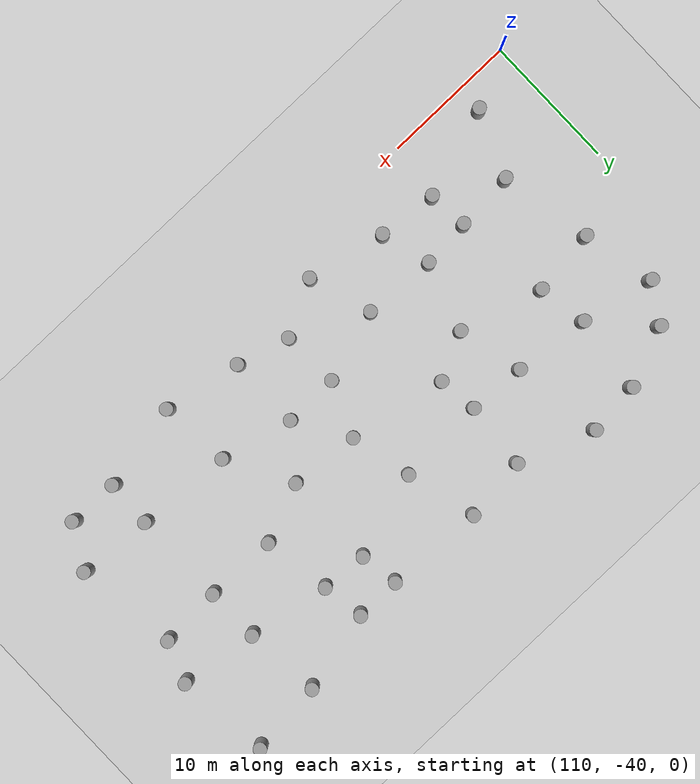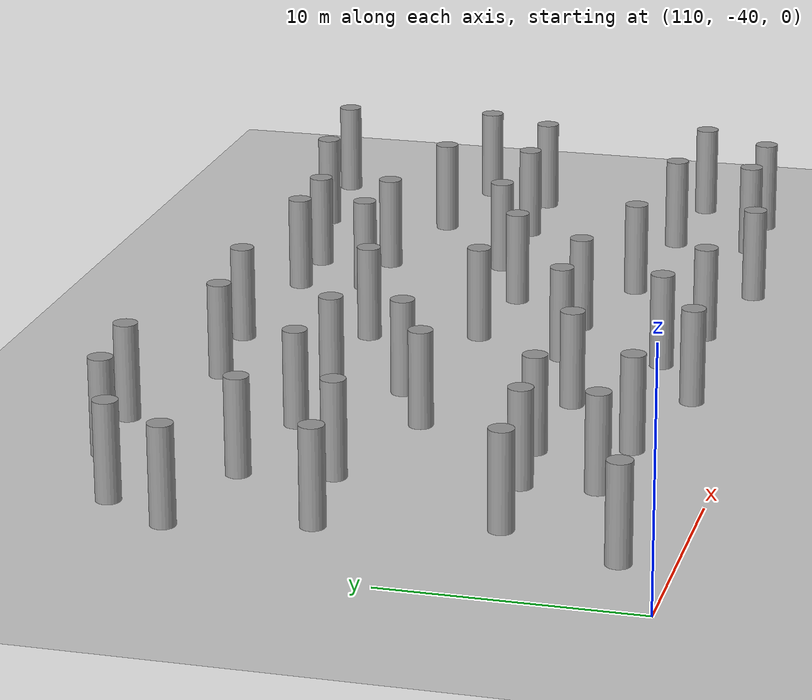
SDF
<sdf version="1.5">
 <world name="circle">
  <model name="ground">
   <static>1</static>
   <link name="link">
    <collision name="collision">
     <geometry><plane><normal>0 0 1</normal><size>100 100</size></plane></geometry>
     <surface><friction><ode><mu>100</mu><mu2>50</mu2></ode></friction></surface>
    </collision>
    <visual name="visual">
     <cast_shadows>0</cast_shadows>
     <geometry><plane><normal>0 0 1</normal><size>100 100</size></plane></geometry>
     <material>
      <script><uri>file://media/materials/scripts/gazebo.material</uri><name>Gazebo/Grey</name></script>
     </material>
    </visual>
    <velocity_decay><linear>0</linear><angular>0</angular></velocity_decay>
   </link>
  </model>
  <model name="unit_cylinder_315">
   <pose>114.154298227 -37.9532087649 2 3e-06 4e-06 -0</pose>
   <static>1</static>
   <self_collide>1</self_collide>
   <link name="link">
    <inertial>
     <mass>1</mass>
     <inertia><ixx>0.145833</ixx><ixy>0</ixy><ixz>0</ixz><iyy>0.145833</iyy><iyz>0</iyz><izz>0.125</izz></inertia>
    </inertial>
    <collision name="collision">
     <geometry><cylinder><radius>0.5</radius><length>4</length></cylinder></geometry>
    </collision>
    <visual name="visual">
     <geometry><cylinder><radius>0.5</radius><length>4</length></cylinder></geometry>
     <material>
      <script><name>Gazebo/Grey</name><uri>file://media/materials/scripts/gazebo.material</uri></script>
     </material>
    </visual>
    <collision name="cyl_collision">
     <geometry><cylinder><radius>0.5</radius><length>4</length></cylinder></geometry>
    </collision>
    <sensor name="my_contact" type="contact">
     <contact><collision>cyl_collision</collision></contact>
     <update_rate>5</update_rate>
    </sensor>
   </link>
  </model>
  <model name="unit_cylinder_316">
   <pose>116.144369179 -33.1801979387 2 3e-06 4e-06 -0</pose>
   <static>1</static>
   <self_collide>1</self_collide>
   <link name="link">
    <inertial>
     <mass>1</mass>
     <inertia><ixx>0.145833</ixx><ixy>0</ixy><ixz>0</ixz><iyy>0.145833</iyy><iyz>0</iyz><izz>0.125</izz></inertia>
    </inertial>
    <collision name="collision">
     <geometry><cylinder><radius>0.5</radius><length>4</length></cylinder></geometry>
    </collision>
    <visual name="visual">
     <geometry><cylinder><radius>0.5</radius><length>4</length></cylinder></geometry>
     <material>
      <script><name>Gazebo/Grey</name><uri>file://media/materials/scripts/gazebo.material</uri></script>
     </material>
    </visual>
    <collision name="cyl_collision">
     <geometry><cylinder><radius>0.5</radius><length>4</length></cylinder></geometry>
    </collision>
    <sensor name="my_contact" type="contact">
     <contact><collision>cyl_collision</collision></contact>
     <update_rate>5</update_rate>
    </sensor>
   </link>
  </model>
  <model name="unit_cylinder_317">
   <pose>114.827357238 -26.4241810437 2 3e-06 4e-06 -0</pose>
   <static>1</static>
   <self_collide>1</self_collide>
   <link name="link">
    <inertial>
     <mass>1</mass>
     <inertia><ixx>0.145833</ixx><ixy>0</ixy><ixz>0</ixz><iyy>0.145833</iyy><iyz>0</iyz><izz>0.125</izz></inertia>
    </inertial>
    <collision name="collision">
     <geometry><cylinder><radius>0.5</radius><length>4</length></cylinder></geometry>
    </collision>
    <visual name="visual">
     <geometry><cylinder><radius>0.5</radius><length>4</length></cylinder></geometry>
     <material>
      <script><name>Gazebo/Grey</name><uri>file://media/materials/scripts/gazebo.material</uri></script>
     </material>
    </visual>
    <collision name="cyl_collision">
     <geometry><cylinder><radius>0.5</radius><length>4</length></cylinder></geometry>
    </collision>
    <sensor name="my_contact" type="contact">
     <contact><collision>cyl_collision</collision></contact>
     <update_rate>5</update_rate>
    </sensor>
   </link>
  </model>
  <model name="unit_cylinder_318">
   <pose>113.630336862 -21.0624383714 2 3e-06 4e-06 -0</pose>
   <static>1</static>
   <self_collide>1</self_collide>
   <link name="link">
    <inertial>
     <mass>1</mass>
     <inertia><ixx>0.145833</ixx><ixy>0</ixy><ixz>0</ixz><iyy>0.145833</iyy><iyz>0</iyz><izz>0.125</izz></inertia>
    </inertial>
    <collision name="collision">
     <geometry><cylinder><radius>0.5</radius><length>4</length></cylinder></geometry>
    </collision>
    <visual name="visual">
     <geometry><cylinder><radius>0.5</radius><length>4</length></cylinder></geometry>
     <material>
      <script><name>Gazebo/Grey</name><uri>file://media/materials/scripts/gazebo.material</uri></script>
     </material>
    </visual>
    <collision name="cyl_collision">
     <geometry><cylinder><radius>0.5</radius><length>4</length></cylinder></geometry>
    </collision>
    <sensor name="my_contact" type="contact">
     <contact><collision>cyl_collision</collision></contact>
     <update_rate>5</update_rate>
    </sensor>
   </link>
  </model>
  <model name="unit_cylinder_319">
   <pose>115.393090659 -18.3143302626 2 3e-06 4e-06 -0</pose>
   <static>1</static>
   <self_collide>1</self_collide>
   <link name="link">
    <inertial>
     <mass>1</mass>
     <inertia><ixx>0.145833</ixx><ixy>0</ixy><ixz>0</ixz><iyy>0.145833</iyy><iyz>0</iyz><izz>0.125</izz></inertia>
    </inertial>
    <collision name="collision">
     <geometry><cylinder><radius>0.5</radius><length>4</length></cylinder></geometry>
    </collision>
    <visual name="visual">
     <geometry><cylinder><radius>0.5</radius><length>4</length></cylinder></geometry>
     <material>
      <script><name>Gazebo/Grey</name><uri>file://media/materials/scripts/gazebo.material</uri></script>
     </material>
    </visual>
    <collision name="cyl_collision">
     <geometry><cylinder><radius>0.5</radius><length>4</length></cylinder></geometry>
    </collision>
    <sensor name="my_contact" type="contact">
     <contact><collision>cyl_collision</collision></contact>
     <update_rate>5</update_rate>
    </sensor>
   </link>
  </model>
  <model name="unit_cylinder_330">
   <pose>120.680619612 -35.805626211 2 3e-06 4e-06 -0</pose>
   <static>1</static>
   <self_collide>1</self_collide>
   <link name="link">
    <inertial>
     <mass>1</mass>
     <inertia><ixx>0.145833</ixx><ixy>0</ixy><ixz>0</ixz><iyy>0.145833</iyy><iyz>0</iyz><izz>0.125</izz></inertia>
    </inertial>
    <collision name="collision">
     <geometry><cylinder><radius>0.5</radius><length>4</length></cylinder></geometry>
    </collision>
    <visual name="visual">
     <geometry><cylinder><radius>0.5</radius><length>4</length></cylinder></geometry>
     <material>
      <script><name>Gazebo/Grey</name><uri>file://media/materials/scripts/gazebo.material</uri></script>
     </material>
    </visual>
    <collision name="cyl_collision">
     <geometry><cylinder><radius>0.5</radius><length>4</length></cylinder></geometry>
    </collision>
    <sensor name="my_contact" type="contact">
     <contact><collision>cyl_collision</collision></contact>
     <update_rate>5</update_rate>
    </sensor>
   </link>
  </model>
  <model name="unit_cylinder_331">
   <pose>120.445257327 -32.88234529 2 3e-06 4e-06 -0</pose>
   <static>1</static>
   <self_collide>1</self_collide>
   <link name="link">
    <inertial>
     <mass>1</mass>
     <inertia><ixx>0.145833</ixx><ixy>0</ixy><ixz>0</ixz><iyy>0.145833</iyy><iyz>0</iyz><izz>0.125</izz></inertia>
    </inertial>
    <collision name="collision">
     <geometry><cylinder><radius>0.5</radius><length>4</length></cylinder></geometry>
    </collision>
    <visual name="visual">
     <geometry><cylinder><radius>0.5</radius><length>4</length></cylinder></geometry>
     <material>
      <script><name>Gazebo/Grey</name><uri>file://media/materials/scripts/gazebo.material</uri></script>
     </material>
    </visual>
    <collision name="cyl_collision">
     <geometry><cylinder><radius>0.5</radius><length>4</length></cylinder></geometry>
    </collision>
    <sensor name="my_contact" type="contact">
     <contact><collision>cyl_collision</collision></contact>
     <update_rate>5</update_rate>
    </sensor>
   </link>
  </model>
  <model name="unit_cylinder_332">
   <pose>119.623123764 -25.8425737322 2 3e-06 4e-06 -0</pose>
   <static>1</static>
   <self_collide>1</self_collide>
   <link name="link">
    <inertial>
     <mass>1</mass>
     <inertia><ixx>0.145833</ixx><ixy>0</ixy><ixz>0</ixz><iyy>0.145833</iyy><iyz>0</iyz><izz>0.125</izz></inertia>
    </inertial>
    <collision name="collision">
     <geometry><cylinder><radius>0.5</radius><length>4</length></cylinder></geometry>
    </collision>
    <visual name="visual">
     <geometry><cylinder><radius>0.5</radius><length>4</length></cylinder></geometry>
     <material>
      <script><name>Gazebo/Grey</name><uri>file://media/materials/scripts/gazebo.material</uri></script>
     </material>
    </visual>
    <collision name="cyl_collision">
     <geometry><cylinder><radius>0.5</radius><length>4</length></cylinder></geometry>
    </collision>
    <sensor name="my_contact" type="contact">
     <contact><collision>cyl_collision</collision></contact>
     <update_rate>5</update_rate>
    </sensor>
   </link>
  </model>
  <model name="unit_cylinder_333">
   <pose>119.026360605 -22.2174276852 2 3e-06 4e-06 -0</pose>
   <static>1</static>
   <self_collide>1</self_collide>
   <link name="link">
    <inertial>
     <mass>1</mass>
     <inertia><ixx>0.145833</ixx><ixy>0</ixy><ixz>0</ixz><iyy>0.145833</iyy><iyz>0</iyz><izz>0.125</izz></inertia>
    </inertial>
    <collision name="collision">
     <geometry><cylinder><radius>0.5</radius><length>4</length></cylinder></geometry>
    </collision>
    <visual name="visual">
     <geometry><cylinder><radius>0.5</radius><length>4</length></cylinder></geometry>
     <material>
      <script><name>Gazebo/Grey</name><uri>file://media/materials/scripts/gazebo.material</uri></script>
     </material>
    </visual>
    <collision name="cyl_collision">
     <geometry><cylinder><radius>0.5</radius><length>4</length></cylinder></geometry>
    </collision>
    <sensor name="my_contact" type="contact">
     <contact><collision>cyl_collision</collision></contact>
     <update_rate>5</update_rate>
    </sensor>
   </link>
  </model>
  <model name="unit_cylinder_334">
   <pose>119.735586412 -16.5512475703 2 3e-06 4e-06 -0</pose>
   <static>1</static>
   <self_collide>1</self_collide>
   <link name="link">
    <inertial>
     <mass>1</mass>
     <inertia><ixx>0.145833</ixx><ixy>0</ixy><ixz>0</ixz><iyy>0.145833</iyy><iyz>0</iyz><izz>0.125</izz></inertia>
    </inertial>
    <collision name="collision">
     <geometry><cylinder><radius>0.5</radius><length>4</length></cylinder></geometry>
    </collision>
    <visual name="visual">
     <geometry><cylinder><radius>0.5</radius><length>4</length></cylinder></geometry>
     <material>
      <script><name>Gazebo/Grey</name><uri>file://media/materials/scripts/gazebo.material</uri></script>
     </material>
    </visual>
    <collision name="cyl_collision">
     <geometry><cylinder><radius>0.5</radius><length>4</length></cylinder></geometry>
    </collision>
    <sensor name="my_contact" type="contact">
     <contact><collision>cyl_collision</collision></contact>
     <update_rate>5</update_rate>
    </sensor>
   </link>
  </model>
  <model name="unit_cylinder_345">
   <pose>125.042195653 -36.2374772595 2 3e-06 4e-06 -0</pose>
   <static>1</static>
   <self_collide>1</self_collide>
   <link name="link">
    <inertial>
     <mass>1</mass>
     <inertia><ixx>0.145833</ixx><ixy>0</ixy><ixz>0</ixz><iyy>0.145833</iyy><iyz>0</iyz><izz>0.125</izz></inertia>
    </inertial>
    <collision name="collision">
     <geometry><cylinder><radius>0.5</radius><length>4</length></cylinder></geometry>
    </collision>
    <visual name="visual">
     <geometry><cylinder><radius>0.5</radius><length>4</length></cylinder></geometry>
     <material>
      <script><name>Gazebo/Grey</name><uri>file://media/materials/scripts/gazebo.material</uri></script>
     </material>
    </visual>
    <collision name="cyl_collision">
     <geometry><cylinder><radius>0.5</radius><length>4</length></cylinder></geometry>
    </collision>
    <sensor name="my_contact" type="contact">
     <contact><collision>cyl_collision</collision></contact>
     <update_rate>5</update_rate>
    </sensor>
   </link>
  </model>
  <model name="unit_cylinder_346">
   <pose>124.050640509 -32.5994924446 2 3e-06 4e-06 -0</pose>
   <static>1</static>
   <self_collide>1</self_collide>
   <link name="link">
    <inertial>
     <mass>1</mass>
     <inertia><ixx>0.145833</ixx><ixy>0</ixy><ixz>0</ixz><iyy>0.145833</iyy><iyz>0</iyz><izz>0.125</izz></inertia>
    </inertial>
    <collision name="collision">
     <geometry><cylinder><radius>0.5</radius><length>4</length></cylinder></geometry>
    </collision>
    <visual name="visual">
     <geometry><cylinder><radius>0.5</radius><length>4</length></cylinder></geometry>
     <material>
      <script><name>Gazebo/Grey</name><uri>file://media/materials/scripts/gazebo.material</uri></script>
     </material>
    </visual>
    <collision name="cyl_collision">
     <geometry><cylinder><radius>0.5</radius><length>4</length></cylinder></geometry>
    </collision>
    <sensor name="my_contact" type="contact">
     <contact><collision>cyl_collision</collision></contact>
     <update_rate>5</update_rate>
    </sensor>
   </link>
  </model>
  <model name="unit_cylinder_347">
   <pose>125.711198511 -27.6208608873 2 3e-06 4e-06 -0</pose>
   <static>1</static>
   <self_collide>1</self_collide>
   <link name="link">
    <inertial>
     <mass>1</mass>
     <inertia><ixx>0.145833</ixx><ixy>0</ixy><ixz>0</ixz><iyy>0.145833</iyy><iyz>0</iyz><izz>0.125</izz></inertia>
    </inertial>
    <collision name="collision">
     <geometry><cylinder><radius>0.5</radius><length>4</length></cylinder></geometry>
    </collision>
    <visual name="visual">
     <geometry><cylinder><radius>0.5</radius><length>4</length></cylinder></geometry>
     <material>
      <script><name>Gazebo/Grey</name><uri>file://media/materials/scripts/gazebo.material</uri></script>
     </material>
    </visual>
    <collision name="cyl_collision">
     <geometry><cylinder><radius>0.5</radius><length>4</length></cylinder></geometry>
    </collision>
    <sensor name="my_contact" type="contact">
     <contact><collision>cyl_collision</collision></contact>
     <update_rate>5</update_rate>
    </sensor>
   </link>
  </model>
  <model name="unit_cylinder_348">
   <pose>124.562776225 -22.8402791782 2 3e-06 4e-06 -0</pose>
   <static>1</static>
   <self_collide>1</self_collide>
   <link name="link">
    <inertial>
     <mass>1</mass>
     <inertia><ixx>0.145833</ixx><ixy>0</ixy><ixz>0</ixz><iyy>0.145833</iyy><iyz>0</iyz><izz>0.125</izz></inertia>
    </inertial>
    <collision name="collision">
     <geometry><cylinder><radius>0.5</radius><length>4</length></cylinder></geometry>
    </collision>
    <visual name="visual">
     <geometry><cylinder><radius>0.5</radius><length>4</length></cylinder></geometry>
     <material>
      <script><name>Gazebo/Grey</name><uri>file://media/materials/scripts/gazebo.material</uri></script>
     </material>
    </visual>
    <collision name="cyl_collision">
     <geometry><cylinder><radius>0.5</radius><length>4</length></cylinder></geometry>
    </collision>
    <sensor name="my_contact" type="contact">
     <contact><collision>cyl_collision</collision></contact>
     <update_rate>5</update_rate>
    </sensor>
   </link>
  </model>
  <model name="unit_cylinder_349">
   <pose>123.653797879 -16.166915868 2 3e-06 4e-06 -0</pose>
   <static>1</static>
   <self_collide>1</self_collide>
   <link name="link">
    <inertial>
     <mass>1</mass>
     <inertia><ixx>0.145833</ixx><ixy>0</ixy><ixz>0</ixz><iyy>0.145833</iyy><iyz>0</iyz><izz>0.125</izz></inertia>
    </inertial>
    <collision name="collision">
     <geometry><cylinder><radius>0.5</radius><length>4</length></cylinder></geometry>
    </collision>
    <visual name="visual">
     <geometry><cylinder><radius>0.5</radius><length>4</length></cylinder></geometry>
     <material>
      <script><name>Gazebo/Grey</name><uri>file://media/materials/scripts/gazebo.material</uri></script>
     </material>
    </visual>
    <collision name="cyl_collision">
     <geometry><cylinder><radius>0.5</radius><length>4</length></cylinder></geometry>
    </collision>
    <sensor name="my_contact" type="contact">
     <contact><collision>cyl_collision</collision></contact>
     <update_rate>5</update_rate>
    </sensor>
   </link>
  </model>
  <model name="unit_cylinder_360">
   <pose>130.820865138 -37.5088026735 2 3e-06 4e-06 -0</pose>
   <static>1</static>
   <self_collide>1</self_collide>
   <link name="link">
    <inertial>
     <mass>1</mass>
     <inertia><ixx>0.145833</ixx><ixy>0</ixy><ixz>0</ixz><iyy>0.145833</iyy><iyz>0</iyz><izz>0.125</izz></inertia>
    </inertial>
    <collision name="collision">
     <geometry><cylinder><radius>0.5</radius><length>4</length></cylinder></geometry>
    </collision>
    <visual name="visual">
     <geometry><cylinder><radius>0.5</radius><length>4</length></cylinder></geometry>
     <material>
      <script><name>Gazebo/Grey</name><uri>file://media/materials/scripts/gazebo.material</uri></script>
     </material>
    </visual>
    <collision name="cyl_collision">
     <geometry><cylinder><radius>0.5</radius><length>4</length></cylinder></geometry>
    </collision>
    <sensor name="my_contact" type="contact">
     <contact><collision>cyl_collision</collision></contact>
     <update_rate>5</update_rate>
    </sensor>
   </link>
  </model>
  <model name="unit_cylinder_361">
   <pose>129.361563273 -32.9100864989 2 3e-06 4e-06 -0</pose>
   <static>1</static>
   <self_collide>1</self_collide>
   <link name="link">
    <inertial>
     <mass>1</mass>
     <inertia><ixx>0.145833</ixx><ixy>0</ixy><ixz>0</ixz><iyy>0.145833</iyy><iyz>0</iyz><izz>0.125</izz></inertia>
    </inertial>
    <collision name="collision">
     <geometry><cylinder><radius>0.5</radius><length>4</length></cylinder></geometry>
    </collision>
    <visual name="visual">
     <geometry><cylinder><radius>0.5</radius><length>4</length></cylinder></geometry>
     <material>
      <script><name>Gazebo/Grey</name><uri>file://media/materials/scripts/gazebo.material</uri></script>
     </material>
    </visual>
    <collision name="cyl_collision">
     <geometry><cylinder><radius>0.5</radius><length>4</length></cylinder></geometry>
    </collision>
    <sensor name="my_contact" type="contact">
     <contact><collision>cyl_collision</collision></contact>
     <update_rate>5</update_rate>
    </sensor>
   </link>
  </model>
  <model name="unit_cylinder_362">
   <pose>129.091577926 -25.9769271423 2 3e-06 4e-06 -0</pose>
   <static>1</static>
   <self_collide>1</self_collide>
   <link name="link">
    <inertial>
     <mass>1</mass>
     <inertia><ixx>0.145833</ixx><ixy>0</ixy><ixz>0</ixz><iyy>0.145833</iyy><iyz>0</iyz><izz>0.125</izz></inertia>
    </inertial>
    <collision name="collision">
     <geometry><cylinder><radius>0.5</radius><length>4</length></cylinder></geometry>
    </collision>
    <visual name="visual">
     <geometry><cylinder><radius>0.5</radius><length>4</length></cylinder></geometry>
     <material>
      <script><name>Gazebo/Grey</name><uri>file://media/materials/scripts/gazebo.material</uri></script>
     </material>
    </visual>
    <collision name="cyl_collision">
     <geometry><cylinder><radius>0.5</radius><length>4</length></cylinder></geometry>
    </collision>
    <sensor name="my_contact" type="contact">
     <contact><collision>cyl_collision</collision></contact>
     <update_rate>5</update_rate>
    </sensor>
   </link>
  </model>
  <model name="unit_cylinder_363">
   <pose>128.745020511 -23.0814966791 2 3e-06 4e-06 -0</pose>
   <static>1</static>
   <self_collide>1</self_collide>
   <link name="link">
    <inertial>
     <mass>1</mass>
     <inertia><ixx>0.145833</ixx><ixy>0</ixy><ixz>0</ixz><iyy>0.145833</iyy><iyz>0</iyz><izz>0.125</izz></inertia>
    </inertial>
    <collision name="collision">
     <geometry><cylinder><radius>0.5</radius><length>4</length></cylinder></geometry>
    </collision>
    <visual name="visual">
     <geometry><cylinder><radius>0.5</radius><length>4</length></cylinder></geometry>
     <material>
      <script><name>Gazebo/Grey</name><uri>file://media/materials/scripts/gazebo.material</uri></script>
     </material>
    </visual>
    <collision name="cyl_collision">
     <geometry><cylinder><radius>0.5</radius><length>4</length></cylinder></geometry>
    </collision>
    <sensor name="my_contact" type="contact">
     <contact><collision>cyl_collision</collision></contact>
     <update_rate>5</update_rate>
    </sensor>
   </link>
  </model>
  <model name="unit_cylinder_364">
   <pose>129.197296353 -18.216525502 2 3e-06 4e-06 -0</pose>
   <static>1</static>
   <self_collide>1</self_collide>
   <link name="link">
    <inertial>
     <mass>1</mass>
     <inertia><ixx>0.145833</ixx><ixy>0</ixy><ixz>0</ixz><iyy>0.145833</iyy><iyz>0</iyz><izz>0.125</izz></inertia>
    </inertial>
    <collision name="collision">
     <geometry><cylinder><radius>0.5</radius><length>4</length></cylinder></geometry>
    </collision>
    <visual name="visual">
     <geometry><cylinder><radius>0.5</radius><length>4</length></cylinder></geometry>
     <material>
      <script><name>Gazebo/Grey</name><uri>file://media/materials/scripts/gazebo.material</uri></script>
     </material>
    </visual>
    <collision name="cyl_collision">
     <geometry><cylinder><radius>0.5</radius><length>4</length></cylinder></geometry>
    </collision>
    <sensor name="my_contact" type="contact">
     <contact><collision>cyl_collision</collision></contact>
     <update_rate>5</update_rate>
    </sensor>
   </link>
  </model>
  <model name="unit_cylinder_375">
   <pose>134.745710434 -35.5015973108 2 3e-06 4e-06 -0</pose>
   <static>1</static>
   <self_collide>1</self_collide>
   <link name="link">
    <inertial>
     <mass>1</mass>
     <inertia><ixx>0.145833</ixx><ixy>0</ixy><ixz>0</ixz><iyy>0.145833</iyy><iyz>0</iyz><izz>0.125</izz></inertia>
    </inertial>
    <collision name="collision">
     <geometry><cylinder><radius>0.5</radius><length>4</length></cylinder></geometry>
    </collision>
    <visual name="visual">
     <geometry><cylinder><radius>0.5</radius><length>4</length></cylinder></geometry>
     <material>
      <script><name>Gazebo/Grey</name><uri>file://media/materials/scripts/gazebo.material</uri></script>
     </material>
    </visual>
    <collision name="cyl_collision">
     <geometry><cylinder><radius>0.5</radius><length>4</length></cylinder></geometry>
    </collision>
    <sensor name="my_contact" type="contact">
     <contact><collision>cyl_collision</collision></contact>
     <update_rate>5</update_rate>
    </sensor>
   </link>
  </model>
  <model name="unit_cylinder_376">
   <pose>134.60451928 -31.3002792839 2 3e-06 4e-06 -0</pose>
   <static>1</static>
   <self_collide>1</self_collide>
   <link name="link">
    <inertial>
     <mass>1</mass>
     <inertia><ixx>0.145833</ixx><ixy>0</ixy><ixz>0</ixz><iyy>0.145833</iyy><iyz>0</iyz><izz>0.125</izz></inertia>
    </inertial>
    <collision name="collision">
     <geometry><cylinder><radius>0.5</radius><length>4</length></cylinder></geometry>
    </collision>
    <visual name="visual">
     <geometry><cylinder><radius>0.5</radius><length>4</length></cylinder></geometry>
     <material>
      <script><name>Gazebo/Grey</name><uri>file://media/materials/scripts/gazebo.material</uri></script>
     </material>
    </visual>
    <collision name="cyl_collision">
     <geometry><cylinder><radius>0.5</radius><length>4</length></cylinder></geometry>
    </collision>
    <sensor name="my_contact" type="contact">
     <contact><collision>cyl_collision</collision></contact>
     <update_rate>5</update_rate>
    </sensor>
   </link>
  </model>
  <model name="unit_cylinder_377">
   <pose>136.267025383 -27.369763445 2 3e-06 4e-06 -0</pose>
   <static>1</static>
   <self_collide>1</self_collide>
   <link name="link">
    <inertial>
     <mass>1</mass>
     <inertia><ixx>0.145833</ixx><ixy>0</ixy><ixz>0</ixz><iyy>0.145833</iyy><iyz>0</iyz><izz>0.125</izz></inertia>
    </inertial>
    <collision name="collision">
     <geometry><cylinder><radius>0.5</radius><length>4</length></cylinder></geometry>
    </collision>
    <visual name="visual">
     <geometry><cylinder><radius>0.5</radius><length>4</length></cylinder></geometry>
     <material>
      <script><name>Gazebo/Grey</name><uri>file://media/materials/scripts/gazebo.material</uri></script>
     </material>
    </visual>
    <collision name="cyl_collision">
     <geometry><cylinder><radius>0.5</radius><length>4</length></cylinder></geometry>
    </collision>
    <sensor name="my_contact" type="contact">
     <contact><collision>cyl_collision</collision></contact>
     <update_rate>5</update_rate>
    </sensor>
   </link>
  </model>
  <model name="unit_cylinder_378">
   <pose>135.228683821 -22.8452529276 2 3e-06 4e-06 -0</pose>
   <static>1</static>
   <self_collide>1</self_collide>
   <link name="link">
    <inertial>
     <mass>1</mass>
     <inertia><ixx>0.145833</ixx><ixy>0</ixy><ixz>0</ixz><iyy>0.145833</iyy><iyz>0</iyz><izz>0.125</izz></inertia>
    </inertial>
    <collision name="collision">
     <geometry><cylinder><radius>0.5</radius><length>4</length></cylinder></geometry>
    </collision>
    <visual name="visual">
     <geometry><cylinder><radius>0.5</radius><length>4</length></cylinder></geometry>
     <material>
      <script><name>Gazebo/Grey</name><uri>file://media/materials/scripts/gazebo.material</uri></script>
     </material>
    </visual>
    <collision name="cyl_collision">
     <geometry><cylinder><radius>0.5</radius><length>4</length></cylinder></geometry>
    </collision>
    <sensor name="my_contact" type="contact">
     <contact><collision>cyl_collision</collision></contact>
     <update_rate>5</update_rate>
    </sensor>
   </link>
  </model>
  <model name="unit_cylinder_379">
   <pose>133.893445396 -17.6969656629 2 3e-06 4e-06 -0</pose>
   <static>1</static>
   <self_collide>1</self_collide>
   <link name="link">
    <inertial>
     <mass>1</mass>
     <inertia><ixx>0.145833</ixx><ixy>0</ixy><ixz>0</ixz><iyy>0.145833</iyy><iyz>0</iyz><izz>0.125</izz></inertia>
    </inertial>
    <collision name="collision">
     <geometry><cylinder><radius>0.5</radius><length>4</length></cylinder></geometry>
    </collision>
    <visual name="visual">
     <geometry><cylinder><radius>0.5</radius><length>4</length></cylinder></geometry>
     <material>
      <script><name>Gazebo/Grey</name><uri>file://media/materials/scripts/gazebo.material</uri></script>
     </material>
    </visual>
    <collision name="cyl_collision">
     <geometry><cylinder><radius>0.5</radius><length>4</length></cylinder></geometry>
    </collision>
    <sensor name="my_contact" type="contact">
     <contact><collision>cyl_collision</collision></contact>
     <update_rate>5</update_rate>
    </sensor>
   </link>
  </model>
  <model name="unit_cylinder_390">
   <pose>138.596410151 -36.6099049592 2 3e-06 4e-06 -0</pose>
   <static>1</static>
   <self_collide>1</self_collide>
   <link name="link">
    <inertial>
     <mass>1</mass>
     <inertia><ixx>0.145833</ixx><ixy>0</ixy><ixz>0</ixz><iyy>0.145833</iyy><iyz>0</iyz><izz>0.125</izz></inertia>
    </inertial>
    <collision name="collision">
     <geometry><cylinder><radius>0.5</radius><length>4</length></cylinder></geometry>
    </collision>
    <visual name="visual">
     <geometry><cylinder><radius>0.5</radius><length>4</length></cylinder></geometry>
     <material>
      <script><name>Gazebo/Grey</name><uri>file://media/materials/scripts/gazebo.material</uri></script>
     </material>
    </visual>
    <collision name="cyl_collision">
     <geometry><cylinder><radius>0.5</radius><length>4</length></cylinder></geometry>
    </collision>
    <sensor name="my_contact" type="contact">
     <contact><collision>cyl_collision</collision></contact>
     <update_rate>5</update_rate>
    </sensor>
   </link>
  </model>
  <model name="unit_cylinder_391">
   <pose>138.59484236 -31.26349035 2 3e-06 4e-06 -0</pose>
   <static>1</static>
   <self_collide>1</self_collide>
   <link name="link">
    <inertial>
     <mass>1</mass>
     <inertia><ixx>0.145833</ixx><ixy>0</ixy><ixz>0</ixz><iyy>0.145833</iyy><iyz>0</iyz><izz>0.125</izz></inertia>
    </inertial>
    <collision name="collision">
     <geometry><cylinder><radius>0.5</radius><length>4</length></cylinder></geometry>
    </collision>
    <visual name="visual">
     <geometry><cylinder><radius>0.5</radius><length>4</length></cylinder></geometry>
     <material>
      <script><name>Gazebo/Grey</name><uri>file://media/materials/scripts/gazebo.material</uri></script>
     </material>
    </visual>
    <collision name="cyl_collision">
     <geometry><cylinder><radius>0.5</radius><length>4</length></cylinder></geometry>
    </collision>
    <sensor name="my_contact" type="contact">
     <contact><collision>cyl_collision</collision></contact>
     <update_rate>5</update_rate>
    </sensor>
   </link>
  </model>
  <model name="unit_cylinder_392">
   <pose>141.336510392 -27.8236592387 2 3e-06 4e-06 -0</pose>
   <static>1</static>
   <self_collide>1</self_collide>
   <link name="link">
    <inertial>
     <mass>1</mass>
     <inertia><ixx>0.145833</ixx><ixy>0</ixy><ixz>0</ixz><iyy>0.145833</iyy><iyz>0</iyz><izz>0.125</izz></inertia>
    </inertial>
    <collision name="collision">
     <geometry><cylinder><radius>0.5</radius><length>4</length></cylinder></geometry>
    </collision>
    <visual name="visual">
     <geometry><cylinder><radius>0.5</radius><length>4</length></cylinder></geometry>
     <material>
      <script><name>Gazebo/Grey</name><uri>file://media/materials/scripts/gazebo.material</uri></script>
     </material>
    </visual>
    <collision name="cyl_collision">
     <geometry><cylinder><radius>0.5</radius><length>4</length></cylinder></geometry>
    </collision>
    <sensor name="my_contact" type="contact">
     <contact><collision>cyl_collision</collision></contact>
     <update_rate>5</update_rate>
    </sensor>
   </link>
  </model>
  <model name="unit_cylinder_393">
   <pose>141.452676785 -20.9108844993 2 3e-06 4e-06 -0</pose>
   <static>1</static>
   <self_collide>1</self_collide>
   <link name="link">
    <inertial>
     <mass>1</mass>
     <inertia><ixx>0.145833</ixx><ixy>0</ixy><ixz>0</ixz><iyy>0.145833</iyy><iyz>0</iyz><izz>0.125</izz></inertia>
    </inertial>
    <collision name="collision">
     <geometry><cylinder><radius>0.5</radius><length>4</length></cylinder></geometry>
    </collision>
    <visual name="visual">
     <geometry><cylinder><radius>0.5</radius><length>4</length></cylinder></geometry>
     <material>
      <script><name>Gazebo/Grey</name><uri>file://media/materials/scripts/gazebo.material</uri></script>
     </material>
    </visual>
    <collision name="cyl_collision">
     <geometry><cylinder><radius>0.5</radius><length>4</length></cylinder></geometry>
    </collision>
    <sensor name="my_contact" type="contact">
     <contact><collision>cyl_collision</collision></contact>
     <update_rate>5</update_rate>
    </sensor>
   </link>
  </model>
  <model name="unit_cylinder_394">
   <pose>141.051438583 -18.0673811634 2 3e-06 4e-06 -0</pose>
   <static>1</static>
   <self_collide>1</self_collide>
   <link name="link">
    <inertial>
     <mass>1</mass>
     <inertia><ixx>0.145833</ixx><ixy>0</ixy><ixz>0</ixz><iyy>0.145833</iyy><iyz>0</iyz><izz>0.125</izz></inertia>
    </inertial>
    <collision name="collision">
     <geometry><cylinder><radius>0.5</radius><length>4</length></cylinder></geometry>
    </collision>
    <visual name="visual">
     <geometry><cylinder><radius>0.5</radius><length>4</length></cylinder></geometry>
     <material>
      <script><name>Gazebo/Grey</name><uri>file://media/materials/scripts/gazebo.material</uri></script>
     </material>
    </visual>
    <collision name="cyl_collision">
     <geometry><cylinder><radius>0.5</radius><length>4</length></cylinder></geometry>
    </collision>
    <sensor name="my_contact" type="contact">
     <contact><collision>cyl_collision</collision></contact>
     <update_rate>5</update_rate>
    </sensor>
   </link>
  </model>
  <model name="unit_cylinder_405">
   <pose>144.294218016 -37.7409954963 2 3e-06 4e-06 -0</pose>
   <static>1</static>
   <self_collide>1</self_collide>
   <link name="link">
    <inertial>
     <mass>1</mass>
     <inertia><ixx>0.145833</ixx><ixy>0</ixy><ixz>0</ixz><iyy>0.145833</iyy><iyz>0</iyz><izz>0.125</izz></inertia>
    </inertial>
    <collision name="collision">
     <geometry><cylinder><radius>0.5</radius><length>4</length></cylinder></geometry>
    </collision>
    <visual name="visual">
     <geometry><cylinder><radius>0.5</radius><length>4</length></cylinder></geometry>
     <material>
      <script><name>Gazebo/Grey</name><uri>file://media/materials/scripts/gazebo.material</uri></script>
     </material>
    </visual>
    <collision name="cyl_collision">
     <geometry><cylinder><radius>0.5</radius><length>4</length></cylinder></geometry>
    </collision>
    <sensor name="my_contact" type="contact">
     <contact><collision>cyl_collision</collision></contact>
     <update_rate>5</update_rate>
    </sensor>
   </link>
  </model>
  <model name="unit_cylinder_406">
   <pose>143.878356252 -32.5695918922 2 3e-06 4e-06 -0</pose>
   <static>1</static>
   <self_collide>1</self_collide>
   <link name="link">
    <inertial>
     <mass>1</mass>
     <inertia><ixx>0.145833</ixx><ixy>0</ixy><ixz>0</ixz><iyy>0.145833</iyy><iyz>0</iyz><izz>0.125</izz></inertia>
    </inertial>
    <collision name="collision">
     <geometry><cylinder><radius>0.5</radius><length>4</length></cylinder></geometry>
    </collision>
    <visual name="visual">
     <geometry><cylinder><radius>0.5</radius><length>4</length></cylinder></geometry>
     <material>
      <script><name>Gazebo/Grey</name><uri>file://media/materials/scripts/gazebo.material</uri></script>
     </material>
    </visual>
    <collision name="cyl_collision">
     <geometry><cylinder><radius>0.5</radius><length>4</length></cylinder></geometry>
    </collision>
    <sensor name="my_contact" type="contact">
     <contact><collision>cyl_collision</collision></contact>
     <update_rate>5</update_rate>
    </sensor>
   </link>
  </model>
  <model name="unit_cylinder_407">
   <pose>145.590588885 -26.1155852672 2 3e-06 4e-06 -0</pose>
   <static>1</static>
   <self_collide>1</self_collide>
   <link name="link">
    <inertial>
     <mass>1</mass>
     <inertia><ixx>0.145833</ixx><ixy>0</ixy><ixz>0</ixz><iyy>0.145833</iyy><iyz>0</iyz><izz>0.125</izz></inertia>
    </inertial>
    <collision name="collision">
     <geometry><cylinder><radius>0.5</radius><length>4</length></cylinder></geometry>
    </collision>
    <visual name="visual">
     <geometry><cylinder><radius>0.5</radius><length>4</length></cylinder></geometry>
     <material>
      <script><name>Gazebo/Grey</name><uri>file://media/materials/scripts/gazebo.material</uri></script>
     </material>
    </visual>
    <collision name="cyl_collision">
     <geometry><cylinder><radius>0.5</radius><length>4</length></cylinder></geometry>
    </collision>
    <sensor name="my_contact" type="contact">
     <contact><collision>cyl_collision</collision></contact>
     <update_rate>5</update_rate>
    </sensor>
   </link>
  </model>
  <model name="unit_cylinder_408">
   <pose>144.835830094 -21.1490378394 2 3e-06 4e-06 -0</pose>
   <static>1</static>
   <self_collide>1</self_collide>
   <link name="link">
    <inertial>
     <mass>1</mass>
     <inertia><ixx>0.145833</ixx><ixy>0</ixy><ixz>0</ixz><iyy>0.145833</iyy><iyz>0</iyz><izz>0.125</izz></inertia>
    </inertial>
    <collision name="collision">
     <geometry><cylinder><radius>0.5</radius><length>4</length></cylinder></geometry>
    </collision>
    <visual name="visual">
     <geometry><cylinder><radius>0.5</radius><length>4</length></cylinder></geometry>
     <material>
      <script><name>Gazebo/Grey</name><uri>file://media/materials/scripts/gazebo.material</uri></script>
     </material>
    </visual>
    <collision name="cyl_collision">
     <geometry><cylinder><radius>0.5</radius><length>4</length></cylinder></geometry>
    </collision>
    <sensor name="my_contact" type="contact">
     <contact><collision>cyl_collision</collision></contact>
     <update_rate>5</update_rate>
    </sensor>
   </link>
  </model>
  <model name="unit_cylinder_409">
   <pose>144.386499834 -18.0531771771 2 3e-06 4e-06 -0</pose>
   <static>1</static>
   <self_collide>1</self_collide>
   <link name="link">
    <inertial>
     <mass>1</mass>
     <inertia><ixx>0.145833</ixx><ixy>0</ixy><ixz>0</ixz><iyy>0.145833</iyy><iyz>0</iyz><izz>0.125</izz></inertia>
    </inertial>
    <collision name="collision">
     <geometry><cylinder><radius>0.5</radius><length>4</length></cylinder></geometry>
    </collision>
    <visual name="visual">
     <geometry><cylinder><radius>0.5</radius><length>4</length></cylinder></geometry>
     <material>
      <script><name>Gazebo/Grey</name><uri>file://media/materials/scripts/gazebo.material</uri></script>
     </material>
    </visual>
    <collision name="cyl_collision">
     <geometry><cylinder><radius>0.5</radius><length>4</length></cylinder></geometry>
    </collision>
    <sensor name="my_contact" type="contact">
     <contact><collision>cyl_collision</collision></contact>
     <update_rate>5</update_rate>
    </sensor>
   </link>
  </model>
  <model name="unit_cylinder_420">
   <pose>150.65758582 -36.4985316763 2 3e-06 4e-06 -0</pose>
   <static>1</static>
   <self_collide>1</self_collide>
   <link name="link">
    <inertial>
     <mass>1</mass>
     <inertia><ixx>0.145833</ixx><ixy>0</ixy><ixz>0</ixz><iyy>0.145833</iyy><iyz>0</iyz><izz>0.125</izz></inertia>
    </inertial>
    <collision name="collision">
     <geometry><cylinder><radius>0.5</radius><length>4</length></cylinder></geometry>
    </collision>
    <visual name="visual">
     <geometry><cylinder><radius>0.5</radius><length>4</length></cylinder></geometry>
     <material>
      <script><name>Gazebo/Grey</name><uri>file://media/materials/scripts/gazebo.material</uri></script>
     </material>
    </visual>
    <collision name="cyl_collision">
     <geometry><cylinder><radius>0.5</radius><length>4</length></cylinder></geometry>
    </collision>
    <sensor name="my_contact" type="contact">
     <contact><collision>cyl_collision</collision></contact>
     <update_rate>5</update_rate>
    </sensor>
   </link>
  </model>
  <model name="unit_cylinder_421">
   <pose>150.80715399 -33.0678882315 2 3e-06 4e-06 -0</pose>
   <static>1</static>
   <self_collide>1</self_collide>
   <link name="link">
    <inertial>
     <mass>1</mass>
     <inertia><ixx>0.145833</ixx><ixy>0</ixy><ixz>0</ixz><iyy>0.145833</iyy><iyz>0</iyz><izz>0.125</izz></inertia>
    </inertial>
    <collision name="collision">
     <geometry><cylinder><radius>0.5</radius><length>4</length></cylinder></geometry>
    </collision>
    <visual name="visual">
     <geometry><cylinder><radius>0.5</radius><length>4</length></cylinder></geometry>
     <material>
      <script><name>Gazebo/Grey</name><uri>file://media/materials/scripts/gazebo.material</uri></script>
     </material>
    </visual>
    <collision name="cyl_collision">
     <geometry><cylinder><radius>0.5</radius><length>4</length></cylinder></geometry>
    </collision>
    <sensor name="my_contact" type="contact">
     <contact><collision>cyl_collision</collision></contact>
     <update_rate>5</update_rate>
    </sensor>
   </link>
  </model>
  <model name="unit_cylinder_422">
   <pose>150.809394707 -26.1895209612 2 3e-06 4e-06 -0</pose>
   <static>1</static>
   <self_collide>1</self_collide>
   <link name="link">
    <inertial>
     <mass>1</mass>
     <inertia><ixx>0.145833</ixx><ixy>0</ixy><ixz>0</ixz><iyy>0.145833</iyy><iyz>0</iyz><izz>0.125</izz></inertia>
    </inertial>
    <collision name="collision">
     <geometry><cylinder><radius>0.5</radius><length>4</length></cylinder></geometry>
    </collision>
    <visual name="visual">
     <geometry><cylinder><radius>0.5</radius><length>4</length></cylinder></geometry>
     <material>
      <script><name>Gazebo/Grey</name><uri>file://media/materials/scripts/gazebo.material</uri></script>
     </material>
    </visual>
    <collision name="cyl_collision">
     <geometry><cylinder><radius>0.5</radius><length>4</length></cylinder></geometry>
    </collision>
    <sensor name="my_contact" type="contact">
     <contact><collision>cyl_collision</collision></contact>
     <update_rate>5</update_rate>
    </sensor>
   </link>
  </model>
  <model name="unit_cylinder_423">
   <pose>150.799191885 -22.2336966367 2 3e-06 4e-06 -0</pose>
   <static>1</static>
   <self_collide>1</self_collide>
   <link name="link">
    <inertial>
     <mass>1</mass>
     <inertia><ixx>0.145833</ixx><ixy>0</ixy><ixz>0</ixz><iyy>0.145833</iyy><iyz>0</iyz><izz>0.125</izz></inertia>
    </inertial>
    <collision name="collision">
     <geometry><cylinder><radius>0.5</radius><length>4</length></cylinder></geometry>
    </collision>
    <visual name="visual">
     <geometry><cylinder><radius>0.5</radius><length>4</length></cylinder></geometry>
     <material>
      <script><name>Gazebo/Grey</name><uri>file://media/materials/scripts/gazebo.material</uri></script>
     </material>
    </visual>
    <collision name="cyl_collision">
     <geometry><cylinder><radius>0.5</radius><length>4</length></cylinder></geometry>
    </collision>
    <sensor name="my_contact" type="contact">
     <contact><collision>cyl_collision</collision></contact>
     <update_rate>5</update_rate>
    </sensor>
   </link>
  </model>
  <model name="unit_cylinder_424">
   <pose>150.33799805 -16.6796950388 2 3e-06 4e-06 -0</pose>
   <static>1</static>
   <self_collide>1</self_collide>
   <link name="link">
    <inertial>
     <mass>1</mass>
     <inertia><ixx>0.145833</ixx><ixy>0</ixy><ixz>0</ixz><iyy>0.145833</iyy><iyz>0</iyz><izz>0.125</izz></inertia>
    </inertial>
    <collision name="collision">
     <geometry><cylinder><radius>0.5</radius><length>4</length></cylinder></geometry>
    </collision>
    <visual name="visual">
     <geometry><cylinder><radius>0.5</radius><length>4</length></cylinder></geometry>
     <material>
      <script><name>Gazebo/Grey</name><uri>file://media/materials/scripts/gazebo.material</uri></script>
     </material>
    </visual>
    <collision name="cyl_collision">
     <geometry><cylinder><radius>0.5</radius><length>4</length></cylinder></geometry>
    </collision>
    <sensor name="my_contact" type="contact">
     <contact><collision>cyl_collision</collision></contact>
     <update_rate>5</update_rate>
    </sensor>
   </link>
  </model>
  <model name="unit_cylinder_435">
   <pose>154.407678575 -36.5657967159 2 3e-06 4e-06 -0</pose>
   <static>1</static>
   <self_collide>1</self_collide>
   <link name="link">
    <inertial>
     <mass>1</mass>
     <inertia><ixx>0.145833</ixx><ixy>0</ixy><ixz>0</ixz><iyy>0.145833</iyy><iyz>0</iyz><izz>0.125</izz></inertia>
    </inertial>
    <collision name="collision">
     <geometry><cylinder><radius>0.5</radius><length>4</length></cylinder></geometry>
    </collision>
    <visual name="visual">
     <geometry><cylinder><radius>0.5</radius><length>4</length></cylinder></geometry>
     <material>
      <script><name>Gazebo/Grey</name><uri>file://media/materials/scripts/gazebo.material</uri></script>
     </material>
    </visual>
    <collision name="cyl_collision">
     <geometry><cylinder><radius>0.5</radius><length>4</length></cylinder></geometry>
    </collision>
    <sensor name="my_contact" type="contact">
     <contact><collision>cyl_collision</collision></contact>
     <update_rate>5</update_rate>
    </sensor>
   </link>
  </model>
  <model name="unit_cylinder_436">
   <pose>156.22779599 -33.4645851786 2 3e-06 4e-06 -0</pose>
   <static>1</static>
   <self_collide>1</self_collide>
   <link name="link">
    <inertial>
     <mass>1</mass>
     <inertia><ixx>0.145833</ixx><ixy>0</ixy><ixz>0</ixz><iyy>0.145833</iyy><iyz>0</iyz><izz>0.125</izz></inertia>
    </inertial>
    <collision name="collision">
     <geometry><cylinder><radius>0.5</radius><length>4</length></cylinder></geometry>
    </collision>
    <visual name="visual">
     <geometry><cylinder><radius>0.5</radius><length>4</length></cylinder></geometry>
     <material>
      <script><name>Gazebo/Grey</name><uri>file://media/materials/scripts/gazebo.material</uri></script>
     </material>
    </visual>
    <collision name="cyl_collision">
     <geometry><cylinder><radius>0.5</radius><length>4</length></cylinder></geometry>
    </collision>
    <sensor name="my_contact" type="contact">
     <contact><collision>cyl_collision</collision></contact>
     <update_rate>5</update_rate>
    </sensor>
   </link>
  </model>
  <model name="unit_cylinder_437">
   <pose>155.299308269 -25.9943272056 2 3e-06 4e-06 -0</pose>
   <static>1</static>
   <self_collide>1</self_collide>
   <link name="link">
    <inertial>
     <mass>1</mass>
     <inertia><ixx>0.145833</ixx><ixy>0</ixy><ixz>0</ixz><iyy>0.145833</iyy><iyz>0</iyz><izz>0.125</izz></inertia>
    </inertial>
    <collision name="collision">
     <geometry><cylinder><radius>0.5</radius><length>4</length></cylinder></geometry>
    </collision>
    <visual name="visual">
     <geometry><cylinder><radius>0.5</radius><length>4</length></cylinder></geometry>
     <material>
      <script><name>Gazebo/Grey</name><uri>file://media/materials/scripts/gazebo.material</uri></script>
     </material>
    </visual>
    <collision name="cyl_collision">
     <geometry><cylinder><radius>0.5</radius><length>4</length></cylinder></geometry>
    </collision>
    <sensor name="my_contact" type="contact">
     <contact><collision>cyl_collision</collision></contact>
     <update_rate>5</update_rate>
    </sensor>
   </link>
  </model>
  <model name="unit_cylinder_438">
   <pose>156.454969942 -23.0245777067 2 3e-06 4e-06 -0</pose>
   <static>1</static>
   <self_collide>1</self_collide>
   <link name="link">
    <inertial>
     <mass>1</mass>
     <inertia><ixx>0.145833</ixx><ixy>0</ixy><ixz>0</ixz><iyy>0.145833</iyy><iyz>0</iyz><izz>0.125</izz></inertia>
    </inertial>
    <collision name="collision">
     <geometry><cylinder><radius>0.5</radius><length>4</length></cylinder></geometry>
    </collision>
    <visual name="visual">
     <geometry><cylinder><radius>0.5</radius><length>4</length></cylinder></geometry>
     <material>
      <script><name>Gazebo/Grey</name><uri>file://media/materials/scripts/gazebo.material</uri></script>
     </material>
    </visual>
    <collision name="cyl_collision">
     <geometry><cylinder><radius>0.5</radius><length>4</length></cylinder></geometry>
    </collision>
    <sensor name="my_contact" type="contact">
     <contact><collision>cyl_collision</collision></contact>
     <update_rate>5</update_rate>
    </sensor>
   </link>
  </model>
  <model name="unit_cylinder_439">
   <pose>155.806742208 -16.1544361272 2 3e-06 4e-06 -0</pose>
   <static>1</static>
   <self_collide>1</self_collide>
   <link name="link">
    <inertial>
     <mass>1</mass>
     <inertia><ixx>0.145833</ixx><ixy>0</ixy><ixz>0</ixz><iyy>0.145833</iyy><iyz>0</iyz><izz>0.125</izz></inertia>
    </inertial>
    <collision name="collision">
     <geometry><cylinder><radius>0.5</radius><length>4</length></cylinder></geometry>
    </collision>
    <visual name="visual">
     <geometry><cylinder><radius>0.5</radius><length>4</length></cylinder></geometry>
     <material>
      <script><name>Gazebo/Grey</name><uri>file://media/materials/scripts/gazebo.material</uri></script>
     </material>
    </visual>
    <collision name="cyl_collision">
     <geometry><cylinder><radius>0.5</radius><length>4</length></cylinder></geometry>
    </collision>
    <sensor name="my_contact" type="contact">
     <contact><collision>cyl_collision</collision></contact>
     <update_rate>5</update_rate>
    </sensor>
   </link>
  </model>
 </world>
</sdf>
